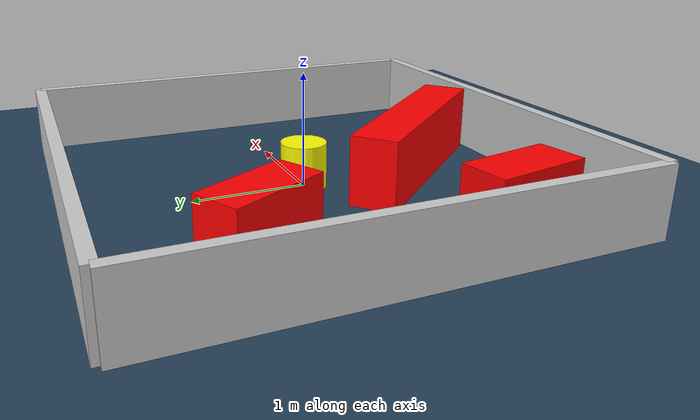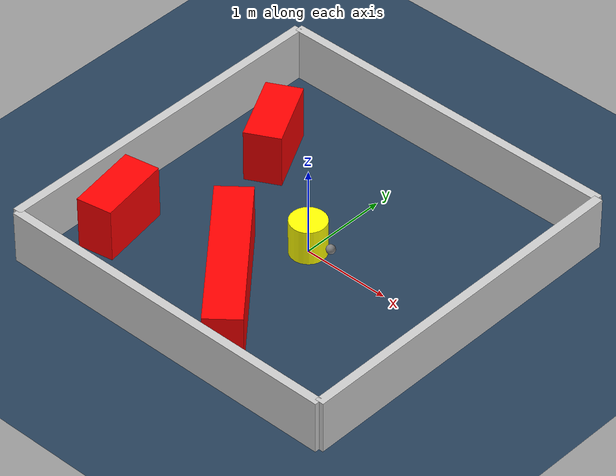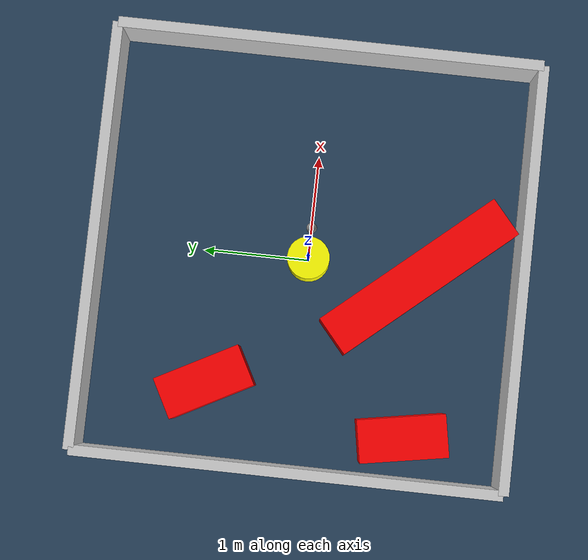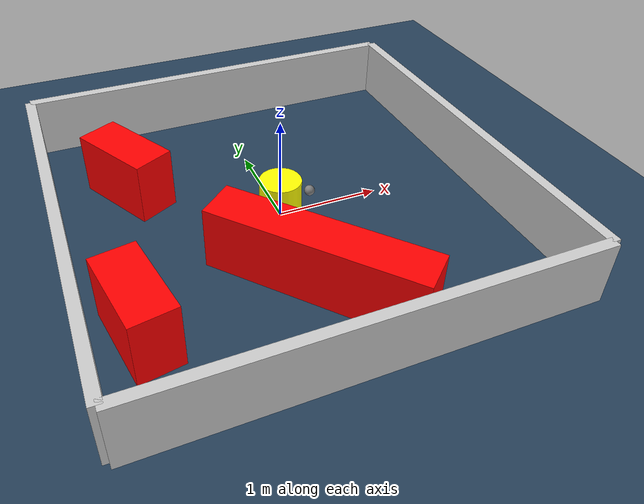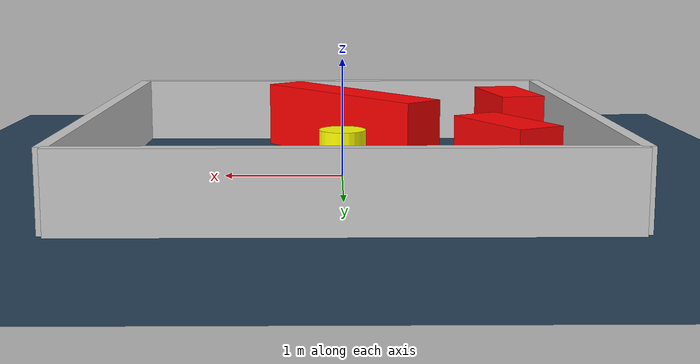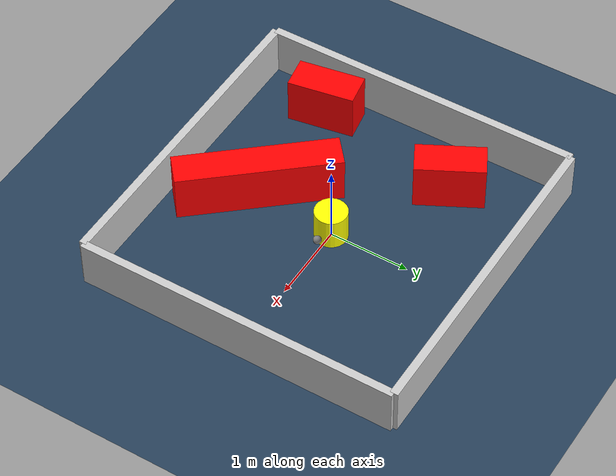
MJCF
<?xml version="1.0" ?>
<mujoco model="generated_environment">
  <option timestep="0.01" integrator="RK4" cone="elliptic"/>
  <default>
    <geom density="1"/>
  </default>
  <asset>
    <texture builtin="gradient" height="3072" rgb1="0.3 0.5 0.7" rgb2="0 0 0" type="skybox" width="512"/>
    <texture builtin="checker" height="300" mark="edge" markrgb="0.8 0.8 0.8" name="groundplane" rgb1="0.2 0.3 0.4" rgb2="0.1 0.2 0.3" type="2d" width="300"/>
    <material name="groundplane" reflectance="0.2" texrepeat="5 5" texture="groundplane" texuniform="true"/>
    <material name="robot" rgba="0.0 1.0 0.0 1"/>
  </asset>
  <worldbody>
    <light dir="0 0 -1" directional="true" pos="0 0 1.5"/>
    <geom condim="4" friction="1.0 0.005 0.001" material="groundplane" name="floor" size="0 0 0.05" type="plane"/>
    <body name="walls">
      <geom name="wall_1" condim="4" pos="-2.0 0.0 0.3" rgba="0.800000011920929 0.800000011920929 0.800000011920929 1.0" size="0.05 2.0 0.3" type="box"/>
      <geom name="wall_2" condim="4" pos="2.0 0.0 0.3" rgba="0.800000011920929 0.800000011920929 0.800000011920929 1.0" size="0.05 2.0 0.3" type="box"/>
      <geom name="wall_3" condim="4" pos="0.0 -2.0 0.3" rgba="0.800000011920929 0.800000011920929 0.800000011920929 1.0" size="2.0 0.05 0.3" type="box"/>
      <geom name="wall_4" condim="4" pos="0.0 2.0 0.3" rgba="0.800000011920929 0.800000011920929 0.800000011920929 1.0" size="2.0 0.05 0.3" type="box"/>
    </body>
    <body name="robot">
      <joint name="joint_x" type="slide" pos="0 0 0" axis="1 0 0"/>
      <joint name="joint_y" type="slide" pos="0 0 0" axis="0 1 0"/>
      <geom name="robot" type="sphere" pos="0.3 0.0 0.2" size="0.05" mass="5." friction="1.0 0.005 0.0001" condim="4" rgba="0.5 0.5 0.5 1.0"/>
      <site name="sensor_ball"/>
    </body>
    <body name="obstacle_movable_1">
      <geom name="obstacle_movable_1" condim="4" pos="0.0 0.0 0.2" euler="0 0 0.0" friction="1.0 0.005 0.001" rgba="1.0 1.0 0.0 1.0" size="0.2 0.2 0.0" type="cylinder" mass="0.1"/>
      <joint type="free"/>
    </body>
    <body name="obstacle_2_static">
      <geom name="obstacle_2_static" condim="4" pos="-1.5786535178632233 -1.0359671803293904 0.3" euler="0 0 99.83285673372811" friction="1.0 0.005 0.001" rgba="1 0 0 1" size="0.41123704192068006 0.2 0.3" type="box"/>
    </body>
    <body name="obstacle_3_static">
      <geom name="obstacle_3_static" condim="4" pos="-1.2535313199555276 0.8345741648642313 0.3" euler="0 0 297.85852435583627" friction="1.0 0.005 0.001" rgba="1 0 0 1" size="0.4194192735712752 0.2 0.3" type="box"/>
    </body>
    <body name="obstacle_4_static">
      <geom name="obstacle_4_static" condim="4" pos="-0.08055639964114902 -1.0382241821172535 0.3" euler="0 0 130.4989466924951" friction="1.0 0.005 0.001" rgba="1 0 0 1" size="0.9806127687901056 0.2 0.3" type="box"/>
    </body>
  </worldbody>
  <actuator>
    <motor name="actuator_x" joint="joint_x" gear="1" ctrlrange="-1 1"/>
    <motor name="actuator_y" joint="joint_y" gear="1" ctrlrange="-1 1"/>
  </actuator>
</mujoco>
